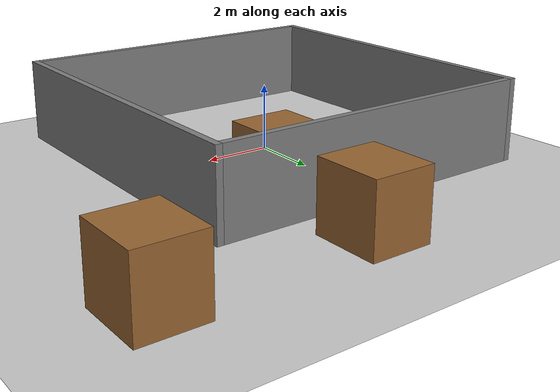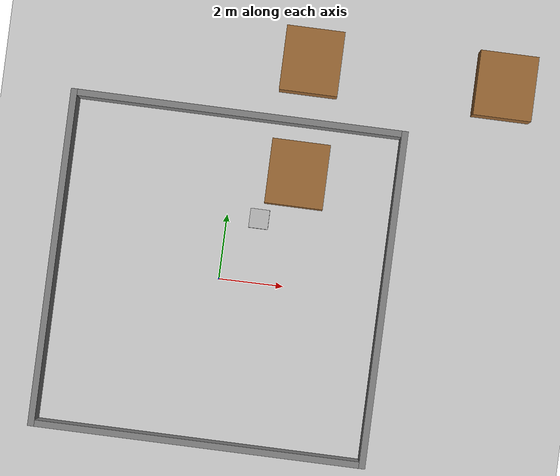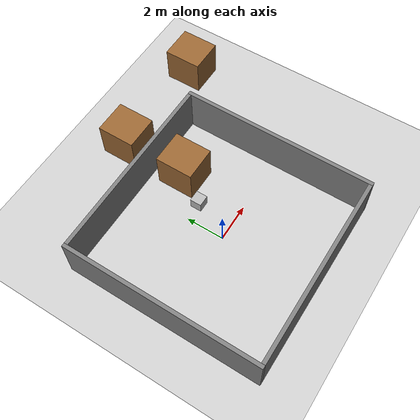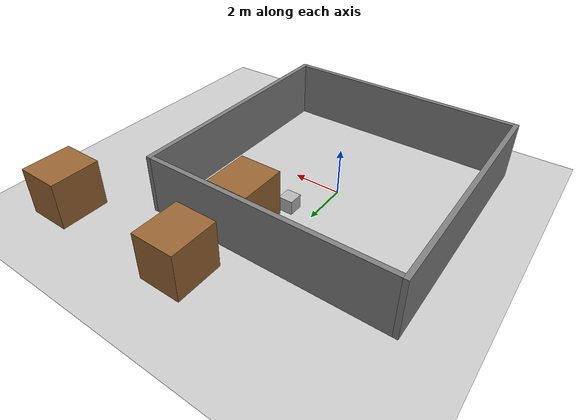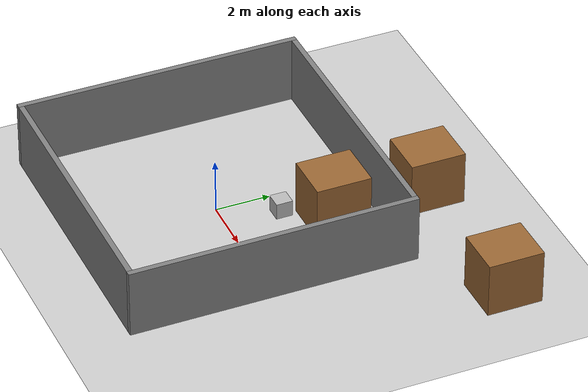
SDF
<?xml version='1.0'?>
<sdf version='1.6'>
  <world name='warehouse_world'>
    <physics name="1ms" type="ignored">
      <max_step_size>0.001</max_step_size>
      <real_time_factor>1.0</real_time_factor>
    </physics>

    <plugin
      filename="libignition-gazebo-physics-system.so"
      name="ignition::gazebo::systems::Physics">
    </plugin>
    <plugin
      filename="libignition-gazebo-user-commands-system.so"
      name="ignition::gazebo::systems::UserCommands">
    </plugin>
    <plugin
      filename="libignition-gazebo-scene-broadcaster-system.so"
      name="ignition::gazebo::systems::SceneBroadcaster">
    </plugin>

    <include>
      <uri>https://fuel.gazebosim.org/1.0/OpenRobotics/models/Ground Plane</uri>
    </include>
    <include>
      <uri>https://fuel.gazebosim.org/1.0/OpenRobotics/models/Sun</uri>
    </include>

    <model name='wall_north'>
        <static>true</static>
        <pose>0 5.1 1.25 0 0 0</pose>
        <link name='link'>
            <collision name='col'><geometry><box><size>10 0.2 2.5</size></box></geometry></collision>
            <visual name='vis'><geometry><box><size>10 0.2 2.5</size></box></geometry><material><ambient>0.5 0.5 0.5 1</ambient><diffuse>0.5 0.5 0.5 1</diffuse></material></visual>
        </link>
    </model>

    <model name='wall_south'>
        <static>true</static>
        <pose>0 -5.1 1.25 0 0 0</pose>
        <link name='link'>
            <collision name='col'><geometry><box><size>10 0.2 2.5</size></box></geometry></collision>
            <visual name='vis'><geometry><box><size>10 0.2 2.5</size></box></geometry><material><ambient>0.5 0.5 0.5 1</ambient><diffuse>0.5 0.5 0.5 1</diffuse></material></visual>
        </link>
    </model>

    <model name='wall_west'>
        <static>true</static>
        <pose>-5.1 0 1.25 0 0 0</pose>
        <link name='link'>
            <collision name='col'><geometry><box><size>0.2 10.4 2.5</size></box></geometry></collision>
            <visual name='vis'><geometry><box><size>0.2 10.4 2.5</size></box></geometry><material><ambient>0.5 0.5 0.5 1</ambient><diffuse>0.5 0.5 0.5 1</diffuse></material></visual>
        </link>
    </model>

    <model name='wall_east'>
        <static>true</static>
        <pose>5.1 0 1.25 0 0 0</pose>
        <link name='link'>
            <collision name='col'><geometry><box><size>0.2 10.4 2.5</size></box></geometry></collision>
            <visual name='vis'><geometry><box><size>0.2 10.4 2.5</size></box></geometry><material><ambient>0.5 0.5 0.5 1</ambient><diffuse>0.5 0.5 0.5 1</diffuse></material></visual>
        </link>
    </model>

    <model name='rack_A'>
      <static>true</static>
      <pose>2.0 7.0 0 0 0 0</pose>
      <link name='link'>
        <collision name='col'><geometry><box><size>1.8 2.0 2.0</size></box></geometry><pose>0 0 1.0 0 0 0</pose></collision>
        <visual name='vis'>
            <geometry><box><size>1.8 2.0 2.0</size></box></geometry>
            <pose>0 0 1.0 0 0 0</pose>
            <material>
                <ambient>0.6 0.4 0.2 1</ambient> <diffuse>0.6 0.4 0.2 1</diffuse>
            </material>
        </visual>
      </link>
    </model>

    <model name='rack_B'>
      <static>true</static>
      <pose>8.0 7.0 0 0 0 0</pose>
      <link name='link'>
        <collision name='col'><geometry><box><size>1.8 2.0 2.0</size></box></geometry><pose>0 0 1.0 0 0 0</pose></collision>
        <visual name='vis'>
            <geometry><box><size>1.8 2.0 2.0</size></box></geometry>
            <pose>0 0 1.0 0 0 0</pose>
            <material>
                <ambient>0.6 0.4 0.2 1</ambient>
                <diffuse>0.6 0.4 0.2 1</diffuse>
            </material>
        </visual>
      </link>
    </model>

    <model name='rack_C'>
      <static>true</static>
      <pose>2.0 3.5 0 0 0 0</pose>
      <link name='link'>
        <collision name='col'><geometry><box><size>1.8 2.0 2.0</size></box></geometry><pose>0 0 1.0 0 0 0</pose></collision>
        <visual name='vis'>
            <geometry><box><size>1.8 2.0 2.0</size></box></geometry>
            <pose>0 0 1.0 0 0 0</pose>
            <material>
                <ambient>0.6 0.4 0.2 1</ambient>
                <diffuse>0.6 0.4 0.2 1</diffuse>
            </material>
        </visual>
      </link>
    </model>

    <model name='crate'>
      <static>true</static>
      <pose>1.0 2.0 0 0 0 0</pose>
      <link name='link'>
        <collision name='col'><geometry><box><size>0.6 0.6 0.6</size></box></geometry><pose>0 0 0.3 0 0 0</pose></collision>
        <visual name='vis'><geometry><box><size>0.6 0.6 0.6</size></box></geometry><pose>0 0 0.3 0 0 0</pose></visual>
      </link>
    </model>

    </world>
</sdf>
